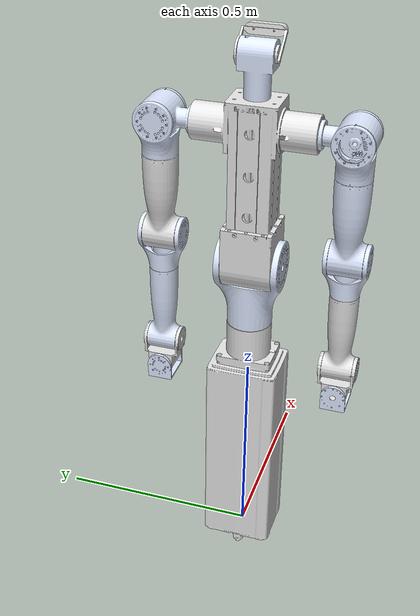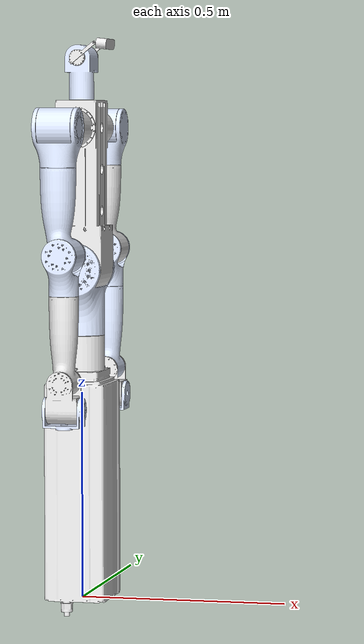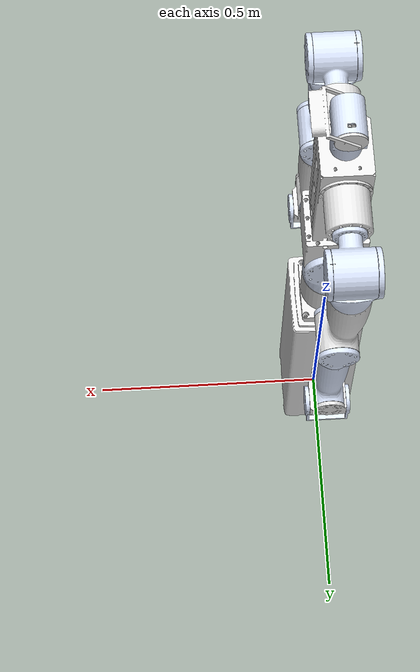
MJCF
<?xml version="1.0" encoding="utf-8"?>
<mujoco model="H1">
  <compiler angle="radian" />
  <option timestep="0.001" gravity="0 0 -9.81" integrator="implicitfast" iterations="100" tolerance="1e-10" cone="elliptic" noslip_iterations="10" />
  <default>
    <default class="hbn110_087">
      <position kp="5500" kv="550" />
      <joint armature="0.12" frictionloss="0.25" />
    </default>
    <default class="hbn90_052">
      <position kp="4500" kv="450" />
      <joint armature="0.1" frictionloss="0.2" />
    </default>
    <default class="hbn80_031">
      <position kp="3500" kv="350" />
      <joint armature="0.06" frictionloss="0.12" />
    </default>
    <default class="hbn70_010">
      <position kp="2000" kv="200" />
      <joint armature="0.025" frictionloss="0.06" />
    </default>
    <default class="hbn52_005">
      <position kp="600" kv="60" />
      <joint armature="0.01" frictionloss="0.03" />
    </default>
  </default>
  <asset>
    <mesh name="base_link" content_type="model/stl" file="../meshes/base_link.STL" />
    <mesh name="waist_Link_j1" content_type="model/stl" file="../meshes/waist_Link_j1.STL" />
    <mesh name="waist_link_J2" content_type="model/stl" file="../meshes/waist_link_J2.STL" />
    <mesh name="left_link_J1" content_type="model/stl" file="../meshes/left_link_J1.STL" />
    <mesh name="Left_Link_J2" content_type="model/stl" file="../meshes/Left_Link_J2.STL" />
    <mesh name="Left_Link_J3" content_type="model/stl" file="../meshes/Left_Link_J3.STL" />
    <mesh name="left_Link_j4" content_type="model/stl" file="../meshes/left_Link_j4.STL" />
    <mesh name="Left_Link_J5" content_type="model/stl" file="../meshes/Left_Link_J5.STL" />
    <mesh name="Left_Link_J6" content_type="model/stl" file="../meshes/Left_Link_J6.STL" />
    <mesh name="Left_Link_J7" content_type="model/stl" file="../meshes/Left_Link_J7.STL" />
    <mesh name="Right_Link_J1" content_type="model/stl" file="../meshes/Right_Link_J1.STL" />
    <mesh name="Right_Link_J2" content_type="model/stl" file="../meshes/Right_Link_J2.STL" />
    <mesh name="Right_Link_J3" content_type="model/stl" file="../meshes/Right_Link_J3.STL" />
    <mesh name="Right_Link_J4" content_type="model/stl" file="../meshes/Right_Link_J4.STL" />
    <mesh name="Right_Link_J5" content_type="model/stl" file="../meshes/Right_Link_J5.STL" />
    <mesh name="Right_Link_J6" content_type="model/stl" file="../meshes/Right_Link_J6.STL" />
    <mesh name="Right_Link_J7" content_type="model/stl" file="../meshes/Right_Link_J7.STL" />
    <mesh name="head_j1" content_type="model/stl" file="../meshes/head_j1.STL" />
    <mesh name="Head_Link_j2" content_type="model/stl" file="../meshes/Head_Link_j2.STL" />
  </asset>
  <worldbody>
    <geom type="mesh" rgba="0.89412 0.89412 0.89412 1" mesh="base_link" />
    <body name="waist_Link_j1" pos="0 0 0.641">
      <inertial pos="-7.2904e-06 -0.0083807 0.096361" quat="0.986403 0.164342 -0.000133284 0.000193956" mass="1.677" diaginertia="0.0079723 0.00674706 0.00546314" />
      <joint name="waist_J1" pos="0 0 0" axis="0 0 -1" range="-3.1415 3.1415" actuatorfrcrange="-52 52" damping="1" class="hbn90_052" />
      <geom type="mesh" rgba="0.86667 0.9098 1 1" mesh="waist_Link_j1" />
      <body name="waist_link_J2" pos="0 0 0.16">
        <inertial pos="-3.6907e-07 -0.0043997 0.20706" quat="0.707111 -0.00014751 0.000150335 0.707103" mass="2.9129" diaginertia="0.014161 0.013533 0.006488" />
        <joint name="waist_J2" pos="0 0 0" axis="0 1 0" range="0 1.5708" actuatorfrcrange="-87 87" damping="1.2" class="hbn110_087" />
        <geom type="mesh" rgba="0.89412 0.89412 0.89412 1" mesh="waist_link_J2" />
        <body name="left_link_J1" pos="0 0.1505 0.34">
          <inertial pos="-0.0043288 0.069057 -4.5569e-05" quat="0.707284 0.706805 0.0103445 0.00838972" mass="0.4143" diaginertia="0.000945777 0.000786419 0.000623874" />
          <joint name="Left_J1" pos="0 0 0" axis="0 1 0" range="-3.1415 3.1415" actuatorfrcrange="-31 31" damping="0.6" class="hbn80_031" />
          <geom type="mesh" rgba="0.86667 0.9098 1 1" mesh="left_link_J1" />
          <body name="Left_Link_J2" pos="0 0.075 0">
            <inertial pos="-0.0036277 2.762e-08 -0.039885" quat="0.698477 -0.110162 -0.110189 0.698465" mass="0.52341" diaginertia="0.001254 0.00108389 0.000962597" />
            <joint name="Left_J2" pos="0 0 0" axis="1 0 0" range="-0.349 2.0944" actuatorfrcrange="-31 31" damping="0.6" class="hbn80_031" />
            <geom type="mesh" rgba="0.86667 0.9098 1 1" mesh="Left_Link_J2" />
            <body name="Left_Link_J3" pos="0 0 -0.093">
              <inertial pos="0.0056911 -0.0019239 -0.13085" quat="0.704019 -0.0420963 -0.0233801 0.708547" mass="0.57095" diaginertia="0.00332533 0.00329003 0.000789789" />
              <joint name="Left_J3" pos="0 0 0" axis="0 0 1" range="-1.5708 1.5708" actuatorfrcrange="-10 10" damping="0.3" class="hbn70_010" />
              <geom type="mesh" rgba="0.89412 0.89412 0.89412 1" mesh="Left_Link_J3" />
              <body name="left_Link_j4" pos="0.012 0 -0.2065">
                <inertial pos="-0.00025246 -0.0039161 -0.041415" quat="0.967336 0.253359 0.00785473 -0.00304025" mass="0.44416" diaginertia="0.000952201 0.00073989 0.000628199" />
                <joint name="Left_J4" pos="0 0 0" axis="0 -1 0" range="0 2.0944" actuatorfrcrange="-10 10" damping="0.3" class="hbn70_010" />
                <geom type="mesh" rgba="0.86667 0.9098 1 1" mesh="left_Link_j4" />
                <body name="Left_Link_J5" pos="0 0 -0.0948">
                  <inertial pos="-3.7549e-06 0.0015048 -0.11283" quat="0.999891 0.0147562 6.35803e-05 0.00107648" mass="0.4197" diaginertia="0.0021747 0.00216223 0.000401226" />
                  <joint name="Left_J5" pos="0 0 0" axis="0 0 1" range="-1.5708 1.5708" actuatorfrcrange="-5 5" damping="0.15" class="hbn52_005" />
                  <geom type="mesh" rgba="0.86667 0.9098 1 1" mesh="Left_Link_J5" />
                  <body name="Left_Link_J6" pos="0 0 -0.2049">
                    <inertial pos="-0.0010919 0.0066883 -0.030929" quat="0.989093 -0.139522 0.0469063 -0.00537134" mass="0.16918" diaginertia="0.000177041 0.000157281 0.000146578" />
                    <joint name="Left_J6" pos="0 0 0" axis="0 1 0" range="-0.6982 0.6982" actuatorfrcrange="-5 5" damping="0.15" class="hbn52_005" />
                    <geom type="mesh" rgba="0.89412 0.89412 0.89412 1" mesh="Left_Link_J6" />
                    <body name="Left_Link_J7" pos="0 0 -0.064">
                      <inertial pos="-0.0023003 4.8562e-06 -0.019732" quat="0.488364 0.51153 0.512469 0.487046" mass="0.16822" diaginertia="0.00019906 0.000198256 0.000110834" />
                      <joint name="Left_J7" pos="0 0 0" axis="1 0 0" range="-1.309 0.6982" actuatorfrcrange="-5 5" damping="0.15" class="hbn52_005" />
                      <geom type="mesh" rgba="0.86667 0.9098 1 1" mesh="Left_Link_J7" />
                    </body>
                  </body>
                </body>
              </body>
            </body>
          </body>
        </body>
        <body name="Right_Link_J1" pos="0 -0.1505 0.34">
          <inertial pos="0.0043288 -0.069057 -4.5569e-05" quat="0.706805 0.707284 0.00838972 0.0103445" mass="0.4143" diaginertia="0.000945777 0.000786419 0.000623874" />
          <joint name="Right_J1" pos="0 0 0" axis="0 -1 0" range="-3.1416 3.1416" actuatorfrcrange="-31 31" damping="0.6" class="hbn80_031" />
          <geom type="mesh" rgba="0.86667 0.9098 1 1" mesh="Right_Link_J1" />
          <body name="Right_Link_J2" pos="0.001 -0.075 0">
            <inertial pos="0.0038069 -3.3841e-08 -0.040778" quat="0.697993 0.113182 0.113209 0.697982" mass="0.51194" diaginertia="0.0012505 0.00107723 0.000958757" />
            <joint name="Right_J2" pos="0 0 0" axis="-1 0 0" range="-0.349 2.0944" actuatorfrcrange="-31 31" damping="0.6" class="hbn80_031" />
            <geom type="mesh" rgba="0.86667 0.9098 1 1" mesh="Right_Link_J2" />
            <body name="Right_Link_J3" pos="0 0 -0.093">
              <inertial pos="0.0066911 -0.0019239 -0.13085" quat="0.704019 -0.0420963 -0.0233801 0.708547" mass="0.57095" diaginertia="0.00332533 0.00329003 0.000789789" />
              <joint name="Right_J3" pos="0 0 0" axis="0 0 1" range="-1.5708 1.5708" actuatorfrcrange="-10 10" damping="0.3" class="hbn70_010" />
              <geom type="mesh" rgba="0.86667 0.9098 1 1" mesh="Right_Link_J3" />
              <body name="Right_Link_J4" pos="0.013 0 -0.2065">
                <inertial pos="-0.00025246 -0.0039161 -0.041415" quat="0.967336 0.253359 0.00785473 -0.00304025" mass="0.44416" diaginertia="0.000952201 0.00073989 0.000628199" />
                <joint name="Right_J4" pos="0 0 0" axis="0 -1 0" range="0 2.0944" actuatorfrcrange="-10 10" damping="0.3" class="hbn70_010" />
                <geom type="mesh" rgba="0.86667 0.9098 1 1" mesh="Right_Link_J4" />
                <body name="Right_Link_J5" pos="0 0 -0.0948">
                  <inertial pos="3.7549e-06 -0.0015048 -0.11283" quat="0.999891 -0.0147562 -6.35803e-05 0.00107648" mass="0.4197" diaginertia="0.0021747 0.00216223 0.000401226" />
                  <joint name="Right_J5" pos="0 0 0" axis="0 0 1" range="-1.5708 1.5708" actuatorfrcrange="-5 5" damping="0.15" class="hbn52_005" />
                  <geom type="mesh" rgba="0.89412 0.89412 0.89412 1" mesh="Right_Link_J5" />
                  <body name="Right_Link_J6" pos="0 0 -0.2049">
                    <inertial pos="0.0010919 -0.0066883 -0.030929" quat="0.989093 0.139522 -0.0469063 -0.00537134" mass="0.16918" diaginertia="0.000177041 0.000157281 0.000146578" />
                    <joint name="Right_j6" pos="0 0 0" axis="0 1 0" range="-0.6982 0.6982" actuatorfrcrange="-5 5" damping="0.15" class="hbn52_005" />
                    <geom type="mesh" rgba="0.89412 0.89412 0.89412 1" mesh="Right_Link_J6" />
                    <body name="Right_Link_J7" pos="0 0 -0.064">
                      <inertial pos="0.0023003 -4.8562e-06 -0.019732" quat="0.51153 0.488364 0.487046 0.512469" mass="0.16822" diaginertia="0.00019906 0.000198256 0.000110834" />
                      <joint name="Right_J7" pos="0 0 0" axis="1 0 0" range="-0.6982 1.309" actuatorfrcrange="-5 5" damping="0.15" class="hbn52_005" />
                      <geom type="mesh" rgba="0.86667 0.9098 1 1" mesh="Right_Link_J7" />
                    </body>
                  </body>
                </body>
              </body>
            </body>
          </body>
        </body>
        <body name="head_j1" pos="0 0 0.4078">
          <inertial pos="8.957e-10 -0.0015181 0.06193" quat="0.861505 0.50775 0 0" mass="0.16247" diaginertia="0.00017836 0.000166307 0.000162483" />
          <joint name="head_j1" pos="0 0 0" axis="0 0 -1" range="-3.1416 3.1416" actuatorfrcrange="-5 5" damping="0.15" class="hbn52_005" />
          <geom type="mesh" rgba="0.86667 0.9098 1 1" mesh="head_j1" />
          <body name="Head_Link_j2" pos="0 0 0.1">
            <inertial pos="0.037458 0.012369 0.022008" quat="0.312832 0.312813 -0.634167 0.634127" mass="0.090281" diaginertia="4.57737e-05 4.29313e-05 1.8379e-05" />
            <joint name="Head_j2" pos="0 0 0" axis="0 1 0" range="-0.7854 0.7854" actuatorfrcrange="-5 5" damping="0.15" class="hbn52_005" />
            <geom type="mesh" rgba="0.89412 0.89412 0.89412 1" mesh="Head_Link_j2" />
          </body>
        </body>
      </body>
    </body>
  </worldbody>
  <actuator>
    <position name="waist_J1_position" joint="waist_J1" class="hbn90_052" forcerange="-52 52" ctrlrange="-3.1415 3.1415" />
    <position name="waist_J2_position" joint="waist_J2" class="hbn110_087" forcerange="-87 87" ctrlrange="0 1.5708" />
    <position name="Left_J1_position" joint="Left_J1" class="hbn80_031" forcerange="-31 31" ctrlrange="-3.1415 3.1415" />
    <position name="Left_J2_position" joint="Left_J2" class="hbn80_031" forcerange="-31 31" ctrlrange="-0.349 2.0944" />
    <position name="Left_J3_position" joint="Left_J3" class="hbn70_010" forcerange="-10 10" ctrlrange="-1.5708 1.5708" />
    <position name="Left_J4_position" joint="Left_J4" class="hbn70_010" forcerange="-10 10" ctrlrange="0 2.0944" />
    <position name="Left_J5_position" joint="Left_J5" class="hbn52_005" forcerange="-5 5" ctrlrange="-1.5708 1.5708" />
    <position name="Left_J6_position" joint="Left_J6" class="hbn52_005" forcerange="-5 5" ctrlrange="-0.6982 0.6982" />
    <position name="Left_J7_position" joint="Left_J7" class="hbn52_005" forcerange="-5 5" ctrlrange="-1.309 0.6982" />
    <position name="Right_J1_position" joint="Right_J1" class="hbn80_031" forcerange="-31 31" ctrlrange="-3.1416 3.1416" />
    <position name="Right_J2_position" joint="Right_J2" class="hbn80_031" forcerange="-31 31" ctrlrange="-0.349 2.0944" />
    <position name="Right_J3_position" joint="Right_J3" class="hbn70_010" forcerange="-10 10" ctrlrange="-1.5708 1.5708" />
    <position name="Right_J4_position" joint="Right_J4" class="hbn70_010" forcerange="-10 10" ctrlrange="0 2.0944" />
    <position name="Right_J5_position" joint="Right_J5" class="hbn52_005" forcerange="-5 5" ctrlrange="-1.5708 1.5708" />
    <position name="Right_j6_position" joint="Right_j6" class="hbn52_005" forcerange="-5 5" ctrlrange="-0.6982 0.6982" />
    <position name="Right_J7_position" joint="Right_J7" class="hbn52_005" forcerange="-5 5" ctrlrange="-0.6982 1.309" />
    <position name="head_j1_position" joint="head_j1" class="hbn52_005" forcerange="-5 5" ctrlrange="-3.1416 3.1416" />
    <position name="Head_j2_position" joint="Head_j2" class="hbn52_005" forcerange="-5 5" ctrlrange="-0.7854 0.7854" />
  </actuator>
</mujoco>
